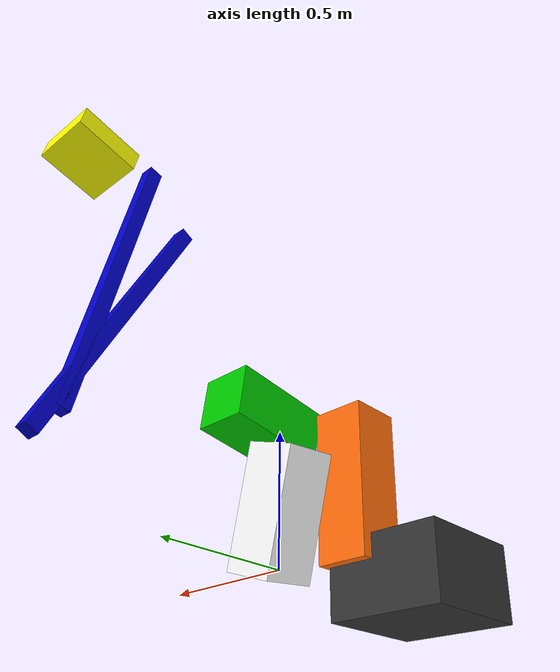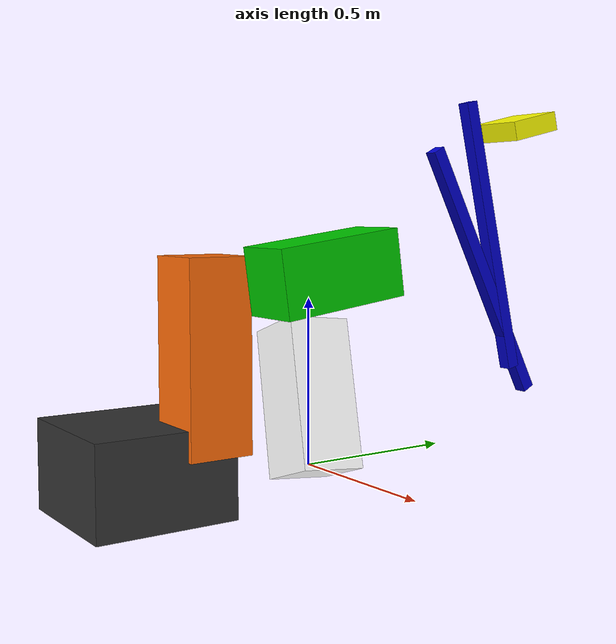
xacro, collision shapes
<?xml version="1.0"?>
<robot xmlns:xacro="http://www.ros.org/wiki/xacro" name="rebearm">
    <xacro:arg name="initial_positions_file" default="initial_positions.yaml" />

    <!-- Import rebearm urdf file -->
    <xacro:include filename="$(find rebearm_description)/xacro/rebearm.urdf.xacro" />

    <!-- Import control_xacro -->
    <xacro:include filename="rebearm.ros2_control.xacro" />

    <xacro:rebearm_ros2_control name="FakeSystem" initial_positions_file="$(arg initial_positions_file)"/>

</robot>

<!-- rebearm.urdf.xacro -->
<!-- Revolute-Revolute Manipulator -->

<robot xmlns:xacro="http://www.ros.org/wiki/xacro" name="rebearm">
  <xacro:arg name="prefix" default="" />

  <!-- Import rebearm macro -->
  <xacro:include filename="$(find rebearm_description)/xacro/rebearm_description.urdf.xacro" />

  <!-- Import Rviz colors -->
  <xacro:include filename="$(find rebearm_description)/xacro/rebearm.materials.xacro" />

  <!-- Import rebearm ros2_control description -->
  <xacro:include filename="$(find rebearm_description)/xacro/rebearm.ros2_control.xacro" />

  <!-- Used for fixing robot -->
  <link name="world"/>
  <gazebo reference="world">
    <static>true</static>
  </gazebo>

  <!-- World fixed joint-->
  <joint name="world_fixed" type="fixed">
    <origin xyz="0 0 0" rpy="0 0 0"/>
    <parent link="world"/>
    <child link="base_link"/>
  </joint>

  <xacro:rebearm parent="world" prefix="$(arg prefix)">
    <origin xyz="0 0 0" rpy="0 0 0" />
  </xacro:rebearm>

  <xacro:rebearm_ros2_control
    name="rebearm" prefix="$(arg prefix)" />

</robot>

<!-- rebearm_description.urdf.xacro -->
<robot xmlns:xacro="http://www.ros.org/wiki/xacro">

  <xacro:macro name="rebearm" params="parent prefix *origin">

  <!-- Constants for robot dimensions -->
  <xacro:property name="mass" value="1" /> <!-- arbitrary value for mass -->

  <xacro:property name="width0"    value="0.440" />  <!-- Square dimensions (widthxwidth) -->
  <xacro:property name="height0"   value="0.280" />  <!-- base link, grey -->
  <xacro:property name="offsetxb"  value="-0.245" />  <!-- Link position from previous link -->
  <xacro:property name="offsetyb"  value="-0.450" />

  <xacro:property name="offsetx1"  value="0.000" />  <!-- joint1 location x,y,z on base link-->
  <xacro:property name="offsety1"  value="0.000" />
  <xacro:property name="offsetz1"  value="0.200" />

  <xacro:property name="width1"    value="0.200" />  <!-- Square dimensions (widthxwidth) -->
  <xacro:property name="height1"   value="0.450" />  <!-- Link 1, white -->
  <xacro:property name="offsetx01" value="-0.100" />  <!-- Link position from previous link -->
  <xacro:property name="offsety01" value="-0.330" />
  <xacro:property name="offsetz01" value="0.000" />

  <xacro:property name="offsetx2"  value="0.000" />  <!-- joint2 location x,y,z on link1-->
  <xacro:property name="offsety2"  value="0.000" />
  <xacro:property name="offsetz2"  value="0.190" />

  <xacro:property name="width2"    value="0.200" />  <!-- Square dimensions (widthxwidth) -->
  <xacro:property name="height2"   value="0.580" />  <!-- Link 2, orange -->
  <xacro:property name="offsetx12" value="-0.110" /> <!-- Link position from previous link -->
  <xacro:property name="offsety12" value="-0.290" />
  <xacro:property name="offsetz12" value="-0.050" />

  <xacro:property name="offsetx3"  value="0.000" />  <!-- joint3 location x,y,z on link2-->
  <xacro:property name="offsety3"  value="0.000" />
  <xacro:property name="offsetz3"  value="0.440" />

  <xacro:property name="width3"    value="0.200" />  <!-- Square dimensions (widthxwidth) -->
  <xacro:property name="height3"   value="0.400" />  <!-- Link 3, green -->
  <xacro:property name="offsetx23" value="0.110" />  <!-- Link position from previous link -->
  <xacro:property name="offsety23" value="0.240" />
  <xacro:property name="offsetz23" value="-0.050" />

  <xacro:property name="offsetx4"  value="0.000" />  <!-- joint4 location x,y,z on link3-->
  <xacro:property name="offsety4"  value="-0.001" />
  <xacro:property name="offsetz4"  value="0.560" />

  <xacro:property name="width4"    value="0.200" />  <!-- Square dimensions (widthxwidth) -->
  <xacro:property name="height4"   value="0.065" />  <!-- Link 4, yellow-->
  <xacro:property name="offsetx34" value="-0.120" />  <!-- Link position from previous link -->
  <xacro:property name="offsety34" value="-0.430" />
  <xacro:property name="offsetz34" value="-0.050" />

  <xacro:property name="offsetx5"  value="0.000" />  <!-- joint5 location x,y,z on link4-->
  <xacro:property name="offsety5"  value="-0.060" />
  <xacro:property name="offsetz5"  value="0.300" />

  <xacro:property name="width5"    value="0.045" />  <!-- Square dimensions (widthxwidth) -->
  <xacro:property name="height5"   value="0.95" />   <!-- Link 5, blue -->
  <xacro:property name="offsetx45" value="-0.120" /> <!-- Link position from previous link -->
  <xacro:property name="offsety45" value="-0.166" />
  <xacro:property name="offsetz45" value="0.000" />

  <xacro:property name="offsetx6"  value="0.000" />  <!-- joint6 location x,y,z on link5-->
  <xacro:property name="offsety6"  value="-0.07" />
  <xacro:property name="offsetz6"  value="0.178" />

  <xacro:property name="width6"    value="0.045" />  <!-- Square dimensions (widthxwidth) -->
  <xacro:property name="height6"   value="0.95" />   <!-- Link 6, blue -->
  <xacro:property name="offsetx56" value="-0.120" /> <!-- Link position from previous link -->
  <xacro:property name="offsety56" value="0.053" />
  <xacro:property name="offsetz56" value="-0.050" />

  <xacro:property name="axel_offset" value="0.0" />  <!-- Space btw top of beam and the each joint -->

  <!-- Base Link -->
  <link name="base_link">
    <collision>
      <origin xyz="${offsetxb} ${offsetyb} 0.0" rpy="0.0 0.0 0.0"/>
      <geometry>
        <box size="${width0} ${width0} ${height0}"/>
      </geometry>
    </collision>
    <visual>
      <origin xyz="${offsetxb} ${offsetyb} 0.0" rpy="0.0 0.0 0.0"/>
      <geometry>
        <mesh filename="package://rebearm_description/meshes/URDF_joint0.stl" scale="0.005 0.005 0.005"/>
      </geometry>
      <material name="grey"/>
    </visual>
    <inertial>
      <origin xyz="0.0 0.0 0.0" rpy="0.0 0.0 0.0"/>
      <mass value="1"/>
      <inertia ixx="1.0" ixy="0.0" ixz="0.0" iyy="1.0" iyz="0.0" izz="1.0"/>
    </inertial>
  </link>

  <!-- Joint 1, z origin = parent height -->
  <joint name="${prefix}joint1" type="revolute">
    <parent link="${prefix}base_link"/>
    <child link="${prefix}link1"/>
    <origin xyz="${offsetx1} ${offsety1} ${offsetz1}" rpy="0.0 0.0 0.0"/>
    <axis xyz="0 0 1"/>
    <dynamics damping="0.7"/>
    <limit velocity="4.8" effort="1" lower="-1.57" upper="1.57" />
  </joint>

  <!-- Link 1-->
  <link name="${prefix}link1">
    <collision>
      <origin rpy="${offsetx01} ${offsety01} ${offsetz01}" xyz="0 0 0" />
      <geometry>
        <box size="${width1} ${width1} ${height1}"/>
      </geometry>
    </collision>
    <visual>
      <origin xyz="${offsetx01}  ${offsety01} ${offsetz01}" rpy="0.0 0.0 0"/>
      <geometry>
        <mesh filename="package://rebearm_description/meshes/URDF_joint1.stl" scale="0.005 0.005 0.005" />
      </geometry>
      <material name="white"/>
    </visual>
    <inertial>
      <origin xyz="0 0 ${height1/2}" rpy="0.0 0.0 0.0"/>
      <mass value="${mass}"/>
      <inertia
        ixx="${mass / 12.0 * (width1*width1 + height1*height1)}" ixy="0.0" ixz="0.0"
        iyy="${mass / 12.0 * (height1*height1 + width1*width1)}" iyz="0.0"
        izz="${mass / 12.0 * (width1*width1 + width1*width1)}"/>
      </inertial>
    </link>

  <!-- Joint 2, z origin = parent height -->
  <joint name="${prefix}joint2" type="revolute">
    <parent link="${prefix}link1"/>
    <child link="${prefix}link2"/>
    <origin xyz="${offsetx2} ${offsety2} ${offsetz2}" rpy="0.0 0.0 0.0"/>
    <filename xyz="-1 0 0"/>
    <dynamics damping="0.7"/>
    <limit velocity="4.8" effort="1" lower="0.52" upper="-0.105" />
  </joint>

  <!-- Link 2-->
  <link name="${prefix}link2">
    <collision>
      <origin xyz="${offsetx12} ${offsety12} ${offsetz12}" rpy="0.0 0.0 0.0"/>
      <geometry>
        <box size="${width2} ${width2} ${height2}"/>
      </geometry>
    </collision>

    <visual>
      <origin xyz="${offsetx12} ${offsety12} ${offsetz12}" rpy="0.0 0.0 0.0"/>
      <geometry>
        <mesh filename="package://rebearm_description/meshes/URDF_joint2.stl" scale="0.005 0.005 0.005" />
      </geometry>
      <material name="orange"/>
    </visual>

    <inertial>
      <origin xyz="0 0 0" rpy="0.0 0.0 0.0"/>
      <mass value="${mass}"/>
      <inertia
        ixx="${mass / 12.0 * (width2*width2 + height2*height2)}" ixy="0.0" ixz="0.0"
        iyy="${mass / 12.0 * (height2*height2 + width2*width2)}" iyz="0.0"
        izz="${mass / 12.0 * (width2*width2 + width2*width2)}"/>
      </inertial>
    </link>

  <!-- Joint 3, z origin = parent height  -->
  <joint name="${prefix}joint3" type="revolute">
    <parent link="${prefix}link2"/>
    <child link="${prefix}link3"/>
    <origin xyz="${offsetx3} ${offsety3} ${offsetz3}" rpy="0.0 0.0 0.0"/>
    <axis xyz="1 0 0"/>
    <dynamics damping="0.7"/>
    <limit velocity="4.8" effort="1" lower="-0.78" upper="-2.09" />
  </joint>

  <!-- Link 3 -->
  <link name="${prefix}link3">
    <collision>
      <origin xyz="${offsetx23} ${offsety23} ${offsetz23}" rpy="0.0  0.0 ${pi}"/>
      <geometry>
        <box size="${width3} ${width3} ${height3}"/>
      </geometry>
    </collision>

    <visual>
      <origin xyz="${offsetx23} ${offsety23} ${offsetz23}" rpy="0.0 0.0 ${pi}"/>
      <geometry>
        <mesh filename="package://rebearm_description/meshes/URDF_joint3.stl" scale="0.005 0.005 0.005" />
      </geometry>
      <material name="green"/>
    </visual>

    <inertial>
      <origin xyz="0 0 0" rpy="0.0 0.0 0.0"/>
      <mass value="${mass}"/>
      <inertia
        ixx="${mass / 12.0 * (width3*width3 + height3*height3)}" ixy="0.0" ixz="0.0"
        iyy="${mass / 12.0 * (height3*height3 + width3*width3)}" iyz="0.0"
        izz="${mass / 12.0 * (width3*width3 + width3*width3)}"/>
      </inertial>
    </link>

  <!-- Joint 4, z origin = parent height  -->
    <joint name="${prefix}joint4" type="revolute">
    <origin xyz="${offsetx4} ${offsety4} ${offsetz4}" rpy="0 0 0" />
    <parent link="${prefix}link3"/>
    <child link="${prefix}link4" />
    <axis xyz="1 0 0"/>
    <dynamics damping="0.7"/>
    <limit velocity="4.8" effort="1" lower="-0.87" upper="-2.09" />
  </joint>

  <!-- Link 4 -->
  <link name="${prefix}link4">
  <collision>
    <origin xyz="${offsetx34} ${offsety34} ${offsetz34}" rpy="0.0 0.0 0.0"/>
    <geometry>
      <box size="${width4} ${width4} ${height4}"/>
    </geometry>
  </collision>

  <visual>
    <origin xyz="${offsetx34} ${offsety34} ${offsetz34}" rpy="0.0 0.0 0.0"/>
    <geometry>
      <mesh filename="package://rebearm_description/meshes/URDF_joint4.stl" scale="0.005 0.005 0.005" />
    </geometry>
    <material name="yellow"/>
  </visual>

  <inertial>
    <origin xyz="0 0 0" rpy="0.0 0.0 0.0"/>
    <mass value="${mass}"/>
    <inertia
      ixx="${mass / 12.0 * (width4*width4 + height4*height4)}" ixy="0.0" ixz="0.0"
      iyy="${mass / 12.0 * (height4*height4 + width4*width4)}" iyz="0.0"
      izz="${mass / 12.0 * (width4*width4 + width4*width4)}"/>
    </inertial>
  </link>

  <!-- Joint 5, z origin = parent height  -->
    <joint name="${prefix}joint5" type="revolute">
    <origin xyz="${offsetx5} ${offsety5} ${offsetz5}" rpy="0.0 0.0 0.0"/>
    <parent link="${prefix}link4"/>
    <child link="${prefix}link5" />
    <axis xyz="0 0 1"/>
    <dynamics damping="0.7"/>
    <limit velocity="4.8" effort="1" lower="${pi*0.5}" upper="${-pi*0.5}" />
  </joint>

  <!-- Link 5, gripper base -->
  <link name="${prefix}link5">
  <collision>
    <origin xyz="${offsetx45} ${offsety45} ${offsetz45}" rpy="0.0 0.0 0.0"/>
    <geometry>
      <box size="${width5} ${width5} ${height5}"/>
    </geometry>
  </collision>

  <visual>
    <origin xyz="${offsetx45} ${offsety45} ${offsetz45}" rpy="0.0 0.0 0.0 "/>
    <geometry>
      <mesh filename="package://rebearm_description/meshes/URDF_joint5.stl" scale="0.005 0.005 0.005" />
    </geometry>
    <material name="blue"/>
  </visual>

  <inertial>
    <origin xyz="0 0 0" rpy="0.0 0.0 0.0"/>
    <mass value="${mass}"/>
    <inertia
      ixx="${mass / 12.0 * (width4*width4 + height4*height4)}" ixy="0.0" ixz="0.0"
      iyy="${mass / 12.0 * (height4*height4 + width4*width4)}" iyz="0.0"
      izz="${mass / 12.0 * (width4*width4 + width4*width4)}"/>
    </inertial>
  </link>

  <!-- Joint 6, z origin = parent height  -->
    <joint name="${prefix}joint6" type="revolute">
    <origin xyz="${offsetx6} ${offsety6} ${offsetz6}" rpy="0.0 0.0 0.0"/>
    <parent link="${prefix}link5"/>
    <child link="${prefix}link6" />
    <axis xyz="1 0 0"/>
    <dynamics damping="0.7"/>
  <limit velocity="4.8" effort="1" lower="-1.6" upper="-1.04" />
  </joint>

  <!-- Link 6, gripper mover -->
  <link name="${prefix}link6">
  <collision>
    <origin xyz="${offsetx56} ${offsety56} ${offsetz56}" rpy="${pi*0.5} 0.0 0.0"/>
    <geometry>
      <box size="${width5} ${width5} ${height5}"/>
    </geometry>
  </collision>

  <visual>
    <origin xyz="${offsetx56} ${offsety56} ${offsetz56}" rpy="${pi*0.5} 0.0 0.0"/>
    <geometry>
      <mesh filename="package://rebearm_description/meshes/URDF_joint6.stl" scale="0.005 0.005 0.005" />
    </geometry>
    <material name="blue"/>
  </visual>

  <inertial>
    <origin xyz="0 0 0" rpy="0.0 0.0 0.0"/>
    <mass value="${mass}"/>
    <inertia
      ixx="${mass / 12.0 * (width4*width4 + height4*height4)}" ixy="0.0" ixz="0.0"
      iyy="${mass / 12.0 * (height4*height4 + width4*width4)}" iyz="0.0"
      izz="${mass / 12.0 * (width4*width4 + width4*width4)}"/>
    </inertial>
  </link>

  </xacro:macro>

</robot>

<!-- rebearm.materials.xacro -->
<!--
Copied from ROS1 example -
https://github.com/ros-simulation/gazebo_ros_demos/blob/kinetic-devel/rrbot_description/urdf/materials.xacro
-->
<robot>

  <material name="black">
    <color rgba="0.0 0.0 0.0 0.9"/>
  </material>

  <material name="blue">
    <color rgba="0.0 0.0 0.8 1.0"/>
  </material>

  <material name="green">
    <color rgba="0.0 0.8 0.0 1.0"/>
  </material>

  <material name="grey">
    <color rgba="0.2 0.2 0.2 0.9"/>
  </material>

  <material name="orange">
    <color rgba="${255/255} ${108/255} ${10/255} 0.9"/>
  </material>

  <material name="brown">
    <color rgba="${222/255} ${207/255} ${195/255} 0.9"/>
  </material>

  <material name="red">
    <color rgba="0.8 0.0 0.0 1.0"/>
  </material>

  <material name="yellow">
    <color rgba="1.0 1.0 0.0 0.9"/>
  </material>

  <material name="white">
    <color rgba="1.0 1.0 1.0 0.9"/>
  </material>

</robot>
